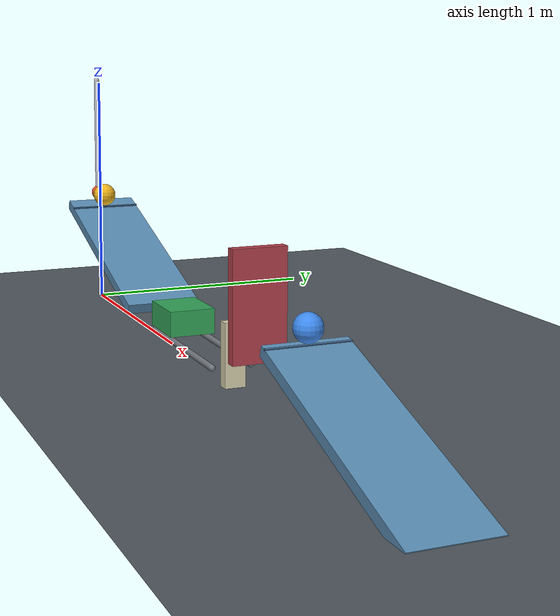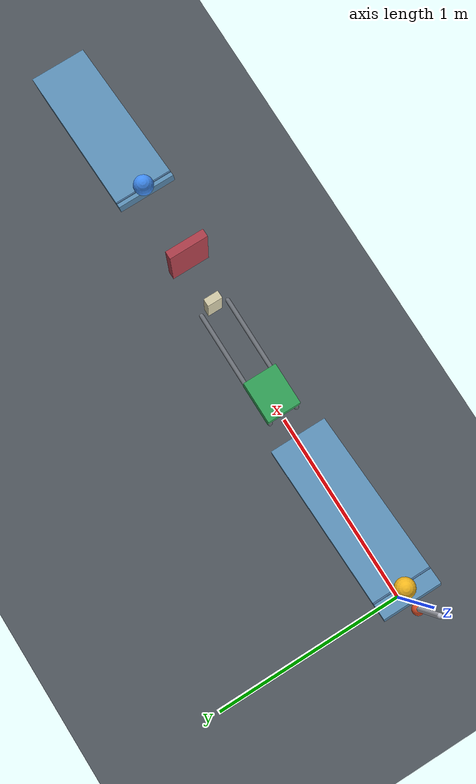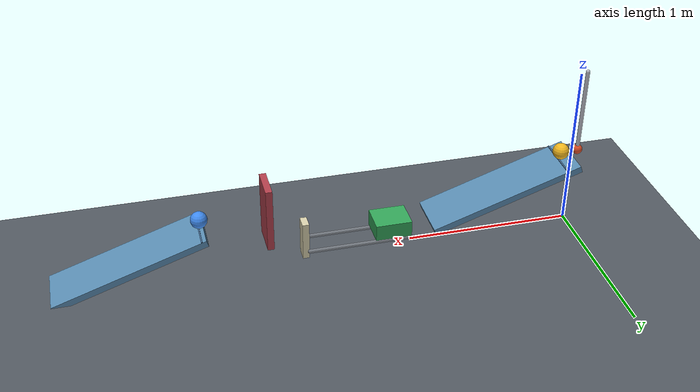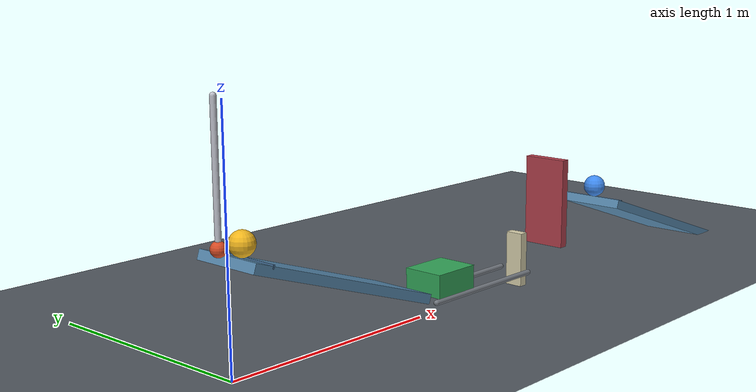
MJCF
<mujoco model="pendulum_ramp_cart_domino_flap">
  <compiler angle="degree" autolimits="true" inertiafromgeom="true"/>
  <option timestep="0.002" gravity="0 0 -9.81" integrator="implicitfast" solver="Newton" iterations="100" tolerance="1e-10" cone="elliptic"/>
  <size njmax="2000" nconmax="400"/>

  <visual>
    <headlight ambient="0.35 0.35 0.35" diffuse="0.7 0.7 0.7" specular="0.2 0.2 0.2"/>
    <map znear="0.01" zfar="30"/>
  </visual>

  <!-- Contact damping ratio 0.69 approximates restitution 0.05.
       Sliding friction is 0.68. Ball contacts also use rolling friction. -->
  <worldbody>
    <light name="main_light" pos="1 -3 5" dir="0 0 -1" directional="true"/>
    <camera name="overview" pos="2 -6 3.2" xyaxes="1 0 0 0 0.38 0.925"/>
    <geom name="floor" type="plane" pos="0 0 0" size="10 5 0.1" friction="0.68 0.005 0.005" condim="3" solref="0.008 0.69" solimp="0.95 0.99 0.001" rgba="0.32 0.35 0.38 1"/>

    <!-- Pendulum length is measured from its hinge to its bob center. -->
    <body name="pendulum1" pos="-0.0367180706 0 1.0386594270">
      <joint name="pendulum1_hinge" type="hinge" axis="0 1 0" damping="0.04"/>
      <geom name="pendulum1_rod" type="capsule" fromto="0 0 -0.025 0 0 -0.52" size="0.012" mass="0.10" friction="0.68 0.005 0.005" condim="3" solref="0.008 0.69" solimp="0.95 0.99 0.001" rgba="0.75 0.76 0.8 1"/>
      <geom name="pendulum1_bob" type="sphere" pos="0 0 -0.55" size="0.03" mass="0.30" friction="0.68 0.005 0.005" condim="3" solref="0.008 0.69" solimp="0.95 0.99 0.001" rgba="0.85 0.3 0.15 1"/>
    </body>

    <!-- The downhill top edge is 0.15 m above the floor.
         A passive lip retains ball1 until struck. -->
    <body name="ramp1" pos="0.4426099603 0 0.2857345019" euler="0 19 0">
      <geom name="ramp1_surface" type="box" size="0.475 0.15 0.02" friction="0.68 0.005 0.005" condim="3" solref="0.008 0.69" solimp="0.95 0.99 0.001" rgba="0.35 0.55 0.7 1"/>
      <geom name="ramp1_release_lip" type="box" pos="-0.39225 0 0.018" size="0.004 0.15 0.008" friction="0.68 0.005 0.005" condim="3" solref="0.008 0.69" solimp="0.95 0.99 0.001" rgba="0.25 0.4 0.55 1"/>
    </body>

    <body name="ball1" pos="0.0682819294 0 0.4886594270">
      <freejoint name="ball1_free"/>
      <geom name="ball1_sphere" type="sphere" size="0.05" mass="0.20" friction="0.68 0.005 0.005" condim="6" solref="0.008 0.69" solimp="0.95 0.99 0.001" rgba="0.95 0.72 0.12 1"/>
    </body>

    <!-- The receiving face is 0.12 m beyond ramp1's low edge. -->
    <body name="cart1" pos="1.1282426468 0 0.14">
      <joint name="cart1_slide" type="slide" axis="1 0 0" damping="0.20" limited="true" range="0 0.40" solreflimit="0.004 1" solimplimit="0.999 0.9999 0.0001"/>
      <geom name="cart1_box" type="box" size="0.11 0.09 0.05" mass="0.50" friction="0.68 0.005 0.005" condim="3" solref="0.008 0.69" solimp="0.95 0.99 0.001" rgba="0.2 0.65 0.35 1"/>
    </body>

    <body name="cart1_track" pos="0 0 0">
      <geom name="cart1_track_left" type="capsule" fromto="1.0182426468 -0.075 0.072 1.6382426468 -0.075 0.072" size="0.012" friction="0.68 0.005 0.005" condim="3" solref="0.008 0.69" solimp="0.95 0.99 0.001" rgba="0.45 0.47 0.5 1"/>
      <geom name="cart1_track_right" type="capsule" fromto="1.0182426468 0.075 0.072 1.6382426468 0.075 0.072" size="0.012" friction="0.68 0.005 0.005" condim="3" solref="0.008 0.69" solimp="0.95 0.99 0.001" rgba="0.45 0.47 0.5 1"/>
    </body>

    <!-- Domino contact begins during the final 5 mm of the cart stroke. -->
    <body name="domino1" pos="1.6532426468 0 0.12">
      <freejoint name="domino1_free"/>
      <geom name="domino1_box" type="box" size="0.02 0.04 0.12" mass="0.25" friction="0.68 0.005 0.005" condim="3" solref="0.008 0.69" solimp="0.95 0.99 0.001" rgba="0.85 0.82 0.68 1"/>
    </body>

    <!-- The initial domino-to-flap clear gap is 0.18 m. -->
    <body name="flap1" pos="1.8732426468 0 0.145">
      <joint name="flap1_hinge" type="hinge" axis="0 1 0" damping="0.04" limited="true" range="0 65" solreflimit="0.004 1" solimplimit="0.999 0.9999 0.0001"/>
      <geom name="flap1_panel" type="box" pos="0 0 0.20" size="0.02 0.10 0.20" mass="0.30" friction="0.68 0.005 0.005" condim="3" solref="0.008 0.69" solimp="0.95 0.99 0.001" rgba="0.7 0.25 0.3 1"/>
    </body>

    <!-- Corrected ramp2 height: its low top edge is at z = 0.
         Ball2 is tangent to the ramp surface and the 4 mm release lip,
         rather than starting embedded in either geom. -->
    <body name="ramp2" pos="2.6898526071 0 0.1357345019" euler="0 19 0">
      <geom name="ramp2_surface" type="box" size="0.475 0.15 0.02" friction="0.68 0.005 0.005" condim="3" solref="0.008 0.69" solimp="0.95 0.99 0.001" rgba="0.35 0.55 0.7 1"/>
      <geom name="ramp2_release_lip" type="box" pos="-0.4484040821 0 0.018" size="0.004 0.15 0.006" friction="0.68 0.005 0.005" condim="3" solref="0.008 0.69" solimp="0.95 0.99 0.001" rgba="0.25 0.4 0.55 1"/>
    </body>

    <body name="ball2" pos="2.2663576103 0 0.3555889711">
      <freejoint name="ball2_free"/>
      <geom name="ball2_sphere" type="sphere" size="0.05" mass="0.20" friction="0.68 0.005 0.005" condim="6" solref="0.008 0.69" solimp="0.95 0.99 0.001" rgba="0.25 0.55 0.95 1"/>
    </body>
  </worldbody>

  <!-- All generalized velocities start at zero.
       Keyframe hinge positions are in radians. -->
  <keyframe>
    <key name="start" qpos="0.9599310886 0.0682819294 0 0.4886594270 1 0 0 0 0 1.6532426468 0 0.12 1 0 0 0 0 2.2663576103 0 0.3555889711 1 0 0 0" qvel="0 0 0 0 0 0 0 0 0 0 0 0 0 0 0 0 0 0 0 0 0"/>
  </keyframe>
</mujoco>
